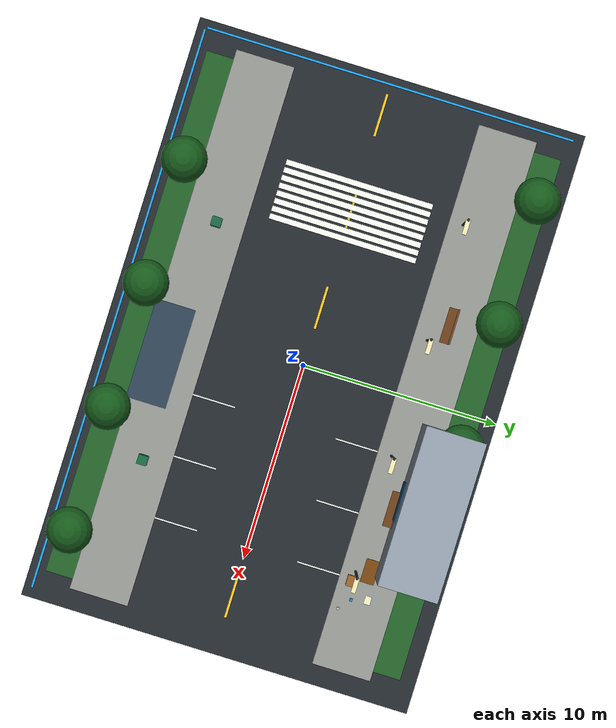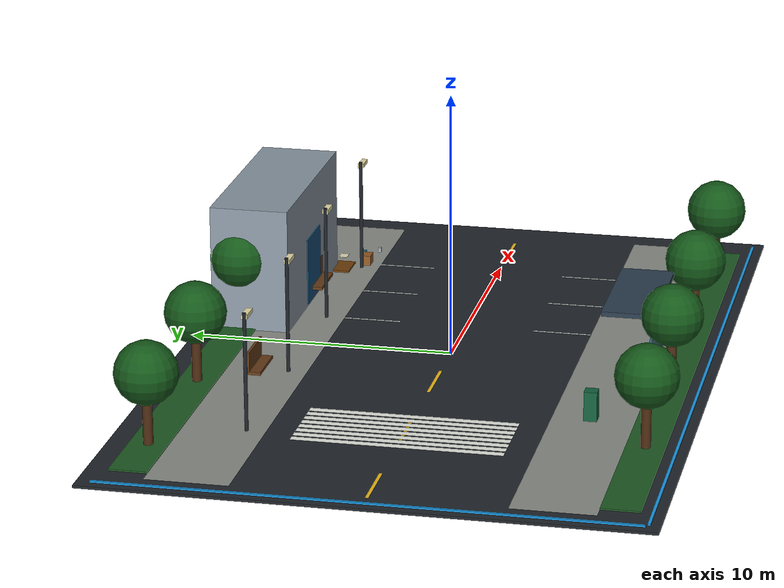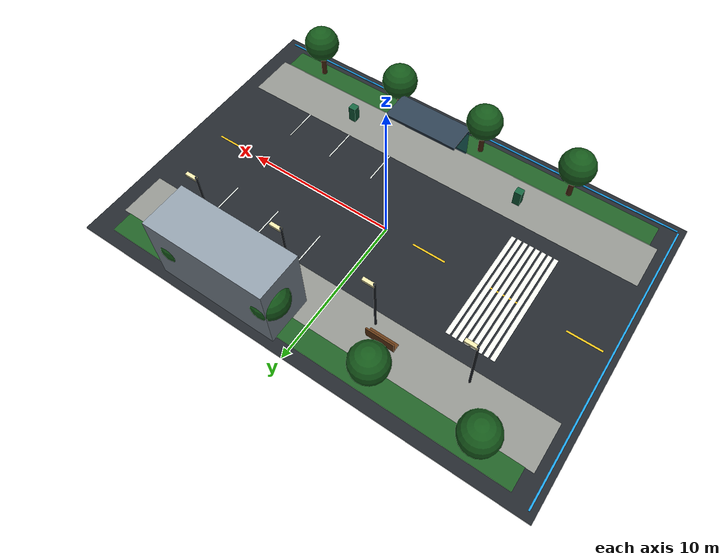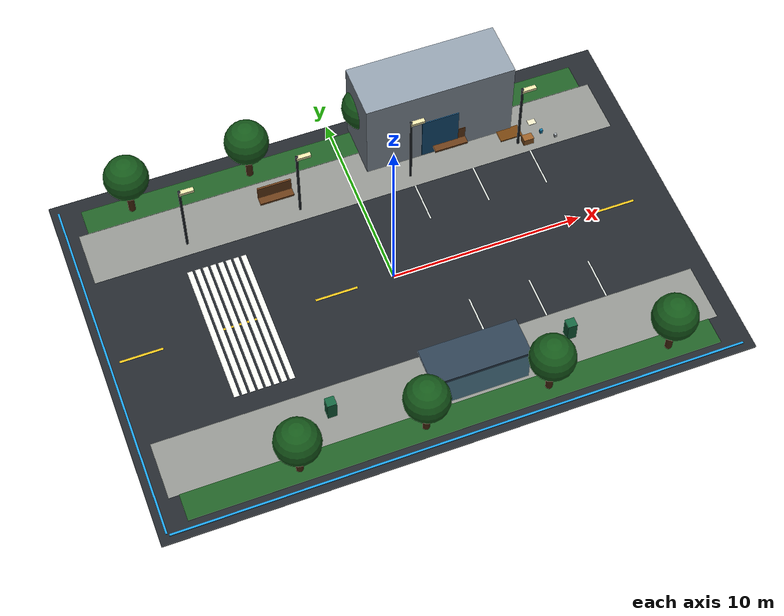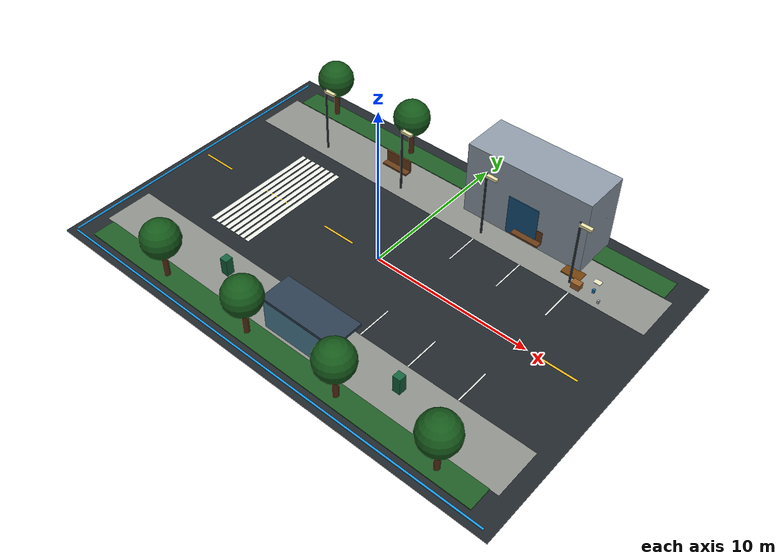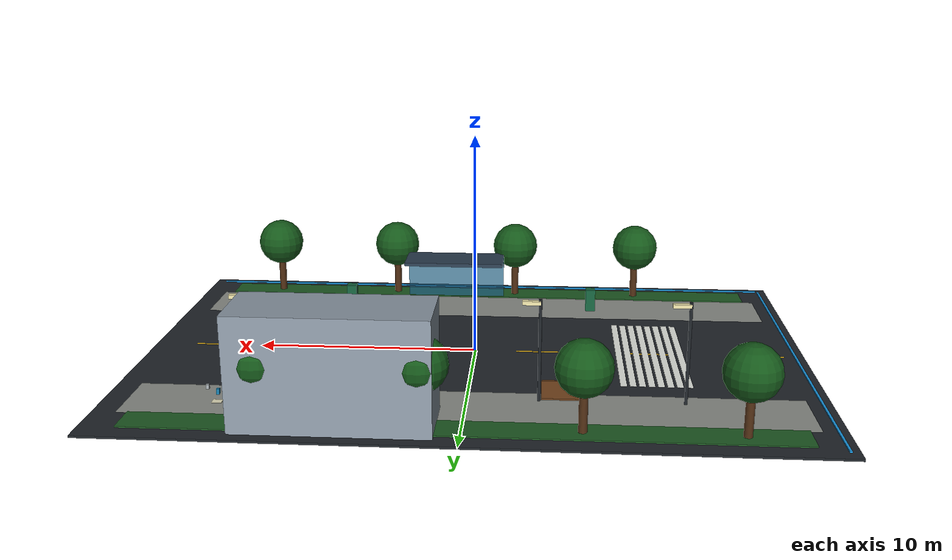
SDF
<?xml version='1.0' encoding='utf-8'?>
<sdf version="1.9">
  <world name="sanitation_campus_small">
    <plugin filename="gz-sim-physics-system" name="gz::sim::systems::Physics" />
    <plugin filename="gz-sim-user-commands-system" name="gz::sim::systems::UserCommands" />
    <plugin filename="gz-sim-scene-broadcaster-system" name="gz::sim::systems::SceneBroadcaster" />
    <plugin filename="gz-sim-sensors-system" name="gz::sim::systems::Sensors">
      <render_engine>ogre2</render_engine>
    </plugin>
    <plugin filename="gz-sim-navsat-system" name="gz::sim::systems::NavSat" />
    <spherical_coordinates>
      <surface_model>EARTH_WGS84</surface_model>
      <world_frame_orientation>ENU</world_frame_orientation>
      <latitude_deg>31.2304</latitude_deg>
      <longitude_deg>121.4737</longitude_deg>
      <elevation>0</elevation>
      <heading_deg>0</heading_deg>
    </spherical_coordinates>
    <gravity>0 0 -9.81</gravity>
    <physics name="1ms" type="ignored">
      <max_step_size>0.005</max_step_size>
      <real_time_factor>1.0</real_time_factor>
    </physics>
    <scene>
      <ambient>0.58 0.60 0.62 1</ambient>
      <background>0.72 0.84 0.94 1</background>
      <shadows>true</shadows>
    </scene>
    <light type="directional" name="sun">
      <cast_shadows>true</cast_shadows>
      <pose>0 0 80 0 0 0</pose>
      <diffuse>0.96 0.91 0.82 1</diffuse>
      <direction>-0.45 0.25 -1.0</direction>
    </light>
    <model name="asphalt_ground">
      <static>true</static>
      <pose>0 0 -0.05 0 0 0</pose>
      <link name="link">
        <collision name="collision">
          <geometry>
            <box>
              <size>30.0 20.0 0.1</size>
            </box>
          </geometry>
        </collision>
        <visual name="visual">
          <geometry>
            <box>
              <size>30.0 20.0 0.1</size>
            </box>
          </geometry>
          <material>
            <ambient>0.13 0.15 0.17 1</ambient>
            <diffuse>0.13 0.15 0.17 1</diffuse>
            <specular>0.04 0.04 0.04 1</specular>
          </material>
        </visual>
      </link>
    </model>
    <model name="north_sidewalk">
      <static>true</static>
      <pose>0 6.3 0.001 0 0 0</pose>
      <link name="link">
        <visual name="visual">
          <geometry>
            <box>
              <size>28.0 3.0 0.002</size>
            </box>
          </geometry>
          <material>
            <ambient>0.55 0.56 0.54 1</ambient>
            <diffuse>0.55 0.56 0.54 1</diffuse>
            <specular>0.04 0.04 0.04 1</specular>
          </material>
        </visual>
      </link>
    </model>
    <model name="south_sidewalk">
      <static>true</static>
      <pose>0 -6.3 0.001 0 0 0</pose>
      <link name="link">
        <visual name="visual">
          <geometry>
            <box>
              <size>28.0 3.0 0.002</size>
            </box>
          </geometry>
          <material>
            <ambient>0.55 0.56 0.54 1</ambient>
            <diffuse>0.55 0.56 0.54 1</diffuse>
            <specular>0.04 0.04 0.04 1</specular>
          </material>
        </visual>
      </link>
    </model>
    <model name="north_green_verge">
      <static>true</static>
      <pose>0 8.5 0.03 0 0 0</pose>
      <link name="link">
        <visual name="visual">
          <geometry>
            <box>
              <size>27.0 1.4 0.06</size>
            </box>
          </geometry>
          <material>
            <ambient>0.12 0.36 0.14 1</ambient>
            <diffuse>0.12 0.36 0.14 1</diffuse>
            <specular>0.04 0.04 0.04 1</specular>
          </material>
        </visual>
      </link>
    </model>
    <model name="south_green_verge">
      <static>true</static>
      <pose>0 -8.5 0.03 0 0 0</pose>
      <link name="link">
        <visual name="visual">
          <geometry>
            <box>
              <size>27.0 1.4 0.06</size>
            </box>
          </geometry>
          <material>
            <ambient>0.12 0.36 0.14 1</ambient>
            <diffuse>0.12 0.36 0.14 1</diffuse>
            <specular>0.04 0.04 0.04 1</specular>
          </material>
        </visual>
      </link>
    </model>
    <model name="center_dash_00">
      <static>true</static>
      <pose>-13.0 0 0.012 0 0 0</pose>
      <link name="link">
        <visual name="visual">
          <geometry>
            <box>
              <size>2.2 0.12 0.012</size>
            </box>
          </geometry>
          <material>
            <ambient>0.95 0.74 0.10 1</ambient>
            <diffuse>0.95 0.74 0.10 1</diffuse>
            <specular>0.04 0.04 0.04 1</specular>
          </material>
        </visual>
      </link>
    </model>
    <model name="center_dash_01">
      <static>true</static>
      <pose>-8.0 0 0.012 0 0 0</pose>
      <link name="link">
        <visual name="visual">
          <geometry>
            <box>
              <size>2.2 0.12 0.012</size>
            </box>
          </geometry>
          <material>
            <ambient>0.95 0.74 0.10 1</ambient>
            <diffuse>0.95 0.74 0.10 1</diffuse>
            <specular>0.04 0.04 0.04 1</specular>
          </material>
        </visual>
      </link>
    </model>
    <model name="center_dash_02">
      <static>true</static>
      <pose>-3.0 0 0.012 0 0 0</pose>
      <link name="link">
        <visual name="visual">
          <geometry>
            <box>
              <size>2.2 0.12 0.012</size>
            </box>
          </geometry>
          <material>
            <ambient>0.95 0.74 0.10 1</ambient>
            <diffuse>0.95 0.74 0.10 1</diffuse>
            <specular>0.04 0.04 0.04 1</specular>
          </material>
        </visual>
      </link>
    </model>
    <model name="center_dash_03">
      <static>true</static>
      <pose>2.0 0 0.012 0 0 0</pose>
      <link name="link">
        <visual name="visual">
          <geometry>
            <box>
              <size>2.2 0.12 0.012</size>
            </box>
          </geometry>
          <material>
            <ambient>0.95 0.74 0.10 1</ambient>
            <diffuse>0.95 0.74 0.10 1</diffuse>
            <specular>0.04 0.04 0.04 1</specular>
          </material>
        </visual>
      </link>
    </model>
    <model name="center_dash_04">
      <static>true</static>
      <pose>7.0 0 0.012 0 0 0</pose>
      <link name="link">
        <visual name="visual">
          <geometry>
            <box>
              <size>2.2 0.12 0.012</size>
            </box>
          </geometry>
          <material>
            <ambient>0.95 0.74 0.10 1</ambient>
            <diffuse>0.95 0.74 0.10 1</diffuse>
            <specular>0.04 0.04 0.04 1</specular>
          </material>
        </visual>
      </link>
    </model>
    <model name="center_dash_05">
      <static>true</static>
      <pose>12.0 0 0.012 0 0 0</pose>
      <link name="link">
        <visual name="visual">
          <geometry>
            <box>
              <size>2.2 0.12 0.012</size>
            </box>
          </geometry>
          <material>
            <ambient>0.95 0.74 0.10 1</ambient>
            <diffuse>0.95 0.74 0.10 1</diffuse>
            <specular>0.04 0.04 0.04 1</specular>
          </material>
        </visual>
      </link>
    </model>
    <model name="crosswalk_00">
      <static>true</static>
      <pose>-9.4 0 0.014 0 0 0</pose>
      <link name="link">
        <visual name="visual">
          <geometry>
            <box>
              <size>0.28 7.6 0.014</size>
            </box>
          </geometry>
          <material>
            <ambient>0.92 0.93 0.90 1</ambient>
            <diffuse>0.92 0.93 0.90 1</diffuse>
            <specular>0.04 0.04 0.04 1</specular>
          </material>
        </visual>
      </link>
    </model>
    <model name="crosswalk_01">
      <static>true</static>
      <pose>-9.0 0 0.014 0 0 0</pose>
      <link name="link">
        <visual name="visual">
          <geometry>
            <box>
              <size>0.28 7.6 0.014</size>
            </box>
          </geometry>
          <material>
            <ambient>0.92 0.93 0.90 1</ambient>
            <diffuse>0.92 0.93 0.90 1</diffuse>
            <specular>0.04 0.04 0.04 1</specular>
          </material>
        </visual>
      </link>
    </model>
    <model name="crosswalk_02">
      <static>true</static>
      <pose>-8.6 0 0.014 0 0 0</pose>
      <link name="link">
        <visual name="visual">
          <geometry>
            <box>
              <size>0.28 7.6 0.014</size>
            </box>
          </geometry>
          <material>
            <ambient>0.92 0.93 0.90 1</ambient>
            <diffuse>0.92 0.93 0.90 1</diffuse>
            <specular>0.04 0.04 0.04 1</specular>
          </material>
        </visual>
      </link>
    </model>
    <model name="crosswalk_03">
      <static>true</static>
      <pose>-8.2 0 0.014 0 0 0</pose>
      <link name="link">
        <visual name="visual">
          <geometry>
            <box>
              <size>0.28 7.6 0.014</size>
            </box>
          </geometry>
          <material>
            <ambient>0.92 0.93 0.90 1</ambient>
            <diffuse>0.92 0.93 0.90 1</diffuse>
            <specular>0.04 0.04 0.04 1</specular>
          </material>
        </visual>
      </link>
    </model>
    <model name="crosswalk_04">
      <static>true</static>
      <pose>-7.8 0 0.014 0 0 0</pose>
      <link name="link">
        <visual name="visual">
          <geometry>
            <box>
              <size>0.28 7.6 0.014</size>
            </box>
          </geometry>
          <material>
            <ambient>0.92 0.93 0.90 1</ambient>
            <diffuse>0.92 0.93 0.90 1</diffuse>
            <specular>0.04 0.04 0.04 1</specular>
          </material>
        </visual>
      </link>
    </model>
    <model name="crosswalk_05">
      <static>true</static>
      <pose>-7.4 0 0.014 0 0 0</pose>
      <link name="link">
        <visual name="visual">
          <geometry>
            <box>
              <size>0.28 7.6 0.014</size>
            </box>
          </geometry>
          <material>
            <ambient>0.92 0.93 0.90 1</ambient>
            <diffuse>0.92 0.93 0.90 1</diffuse>
            <specular>0.04 0.04 0.04 1</specular>
          </material>
        </visual>
      </link>
    </model>
    <model name="crosswalk_06">
      <static>true</static>
      <pose>-7.0 0 0.014 0 0 0</pose>
      <link name="link">
        <visual name="visual">
          <geometry>
            <box>
              <size>0.28 7.6 0.014</size>
            </box>
          </geometry>
          <material>
            <ambient>0.92 0.93 0.90 1</ambient>
            <diffuse>0.92 0.93 0.90 1</diffuse>
            <specular>0.04 0.04 0.04 1</specular>
          </material>
        </visual>
      </link>
    </model>
    <model name="crosswalk_07">
      <static>true</static>
      <pose>-6.6 0 0.014 0 0 0</pose>
      <link name="link">
        <visual name="visual">
          <geometry>
            <box>
              <size>0.28 7.6 0.014</size>
            </box>
          </geometry>
          <material>
            <ambient>0.92 0.93 0.90 1</ambient>
            <diffuse>0.92 0.93 0.90 1</diffuse>
            <specular>0.04 0.04 0.04 1</specular>
          </material>
        </visual>
      </link>
    </model>
    <model name="parking_line_-1_0">
      <static>true</static>
      <pose>3.0 -3.6999999999999997 0.013 0 0 0</pose>
      <link name="link">
        <visual name="visual">
          <geometry>
            <box>
              <size>0.08 2.2 0.012</size>
            </box>
          </geometry>
          <material>
            <ambient>0.86 0.88 0.86 1</ambient>
            <diffuse>0.86 0.88 0.86 1</diffuse>
            <specular>0.04 0.04 0.04 1</specular>
          </material>
        </visual>
      </link>
    </model>
    <model name="parking_line_1_0">
      <static>true</static>
      <pose>3.0 3.6999999999999997 0.013 0 0 0</pose>
      <link name="link">
        <visual name="visual">
          <geometry>
            <box>
              <size>0.08 2.2 0.012</size>
            </box>
          </geometry>
          <material>
            <ambient>0.86 0.88 0.86 1</ambient>
            <diffuse>0.86 0.88 0.86 1</diffuse>
            <specular>0.04 0.04 0.04 1</specular>
          </material>
        </visual>
      </link>
    </model>
    <model name="parking_line_-1_1">
      <static>true</static>
      <pose>6.2 -3.6999999999999997 0.013 0 0 0</pose>
      <link name="link">
        <visual name="visual">
          <geometry>
            <box>
              <size>0.08 2.2 0.012</size>
            </box>
          </geometry>
          <material>
            <ambient>0.86 0.88 0.86 1</ambient>
            <diffuse>0.86 0.88 0.86 1</diffuse>
            <specular>0.04 0.04 0.04 1</specular>
          </material>
        </visual>
      </link>
    </model>
    <model name="parking_line_1_1">
      <static>true</static>
      <pose>6.2 3.6999999999999997 0.013 0 0 0</pose>
      <link name="link">
        <visual name="visual">
          <geometry>
            <box>
              <size>0.08 2.2 0.012</size>
            </box>
          </geometry>
          <material>
            <ambient>0.86 0.88 0.86 1</ambient>
            <diffuse>0.86 0.88 0.86 1</diffuse>
            <specular>0.04 0.04 0.04 1</specular>
          </material>
        </visual>
      </link>
    </model>
    <model name="parking_line_-1_2">
      <static>true</static>
      <pose>9.4 -3.6999999999999997 0.013 0 0 0</pose>
      <link name="link">
        <visual name="visual">
          <geometry>
            <box>
              <size>0.08 2.2 0.012</size>
            </box>
          </geometry>
          <material>
            <ambient>0.86 0.88 0.86 1</ambient>
            <diffuse>0.86 0.88 0.86 1</diffuse>
            <specular>0.04 0.04 0.04 1</specular>
          </material>
        </visual>
      </link>
    </model>
    <model name="parking_line_1_2">
      <static>true</static>
      <pose>9.4 3.6999999999999997 0.013 0 0 0</pose>
      <link name="link">
        <visual name="visual">
          <geometry>
            <box>
              <size>0.08 2.2 0.012</size>
            </box>
          </geometry>
          <material>
            <ambient>0.86 0.88 0.86 1</ambient>
            <diffuse>0.86 0.88 0.86 1</diffuse>
            <specular>0.04 0.04 0.04 1</specular>
          </material>
        </visual>
      </link>
    </model>
    <model name="demo_service_center">
      <static>true</static>
      <pose>5.0 8.0 2.4 0 0 0</pose>
      <link name="link">
        <collision name="collision">
          <geometry>
            <box>
              <size>8.0 3.0 4.8</size>
            </box>
          </geometry>
        </collision>
        <visual name="visual">
          <geometry>
            <box>
              <size>8.0 3.0 4.8</size>
            </box>
          </geometry>
          <material>
            <ambient>0.55 0.60 0.65 1</ambient>
            <diffuse>0.55 0.60 0.65 1</diffuse>
            <specular>0.04 0.04 0.04 1</specular>
          </material>
        </visual>
      </link>
    </model>
    <model name="demo_glass_entry">
      <static>true</static>
      <pose>5.0 6.49 1.4 0 0 0</pose>
      <link name="link">
        <visual name="visual">
          <geometry>
            <box>
              <size>2.0 0.08 2.6</size>
            </box>
          </geometry>
          <material>
            <ambient>0.08 0.31 0.48 1</ambient>
            <diffuse>0.08 0.31 0.48 1</diffuse>
            <specular>0.04 0.04 0.04 1</specular>
          </material>
        </visual>
      </link>
    </model>
    <model name="tree_00">
      <static>true</static>
      <pose>-11.0 8.5 0 0 0 0</pose>
      <link name="link">
        <collision name="trunk_collision">
          <geometry>
            <cylinder>
              <radius>0.18</radius>
              <length>2.2</length>
            </cylinder>
          </geometry>
          <pose>0 0 1.1 0 0 0</pose>
        </collision>
        <visual name="trunk">
          <pose>0 0 1.1 0 0 0</pose>
          <geometry>
            <cylinder>
              <radius>0.18</radius>
              <length>2.2</length>
            </cylinder>
          </geometry>
          <material>
            <ambient>0.30 0.17 0.07 1</ambient>
            <diffuse>0.30 0.17 0.07 1</diffuse>
            <specular>0.04 0.04 0.04 1</specular>
          </material>
        </visual>
        <visual name="crown">
          <pose>0 0 2.7 0 0 0</pose>
          <geometry>
            <sphere>
              <radius>1.15</radius>
            </sphere>
          </geometry>
          <material>
            <ambient>0.08 0.34 0.10 1</ambient>
            <diffuse>0.08 0.34 0.10 1</diffuse>
            <specular>0.04 0.04 0.04 1</specular>
          </material>
        </visual>
      </link>
    </model>
    <model name="tree_01">
      <static>true</static>
      <pose>-7.857142857142858 -8.5 0 0 0 0</pose>
      <link name="link">
        <collision name="trunk_collision">
          <geometry>
            <cylinder>
              <radius>0.18</radius>
              <length>2.2</length>
            </cylinder>
          </geometry>
          <pose>0 0 1.1 0 0 0</pose>
        </collision>
        <visual name="trunk">
          <pose>0 0 1.1 0 0 0</pose>
          <geometry>
            <cylinder>
              <radius>0.18</radius>
              <length>2.2</length>
            </cylinder>
          </geometry>
          <material>
            <ambient>0.30 0.17 0.07 1</ambient>
            <diffuse>0.30 0.17 0.07 1</diffuse>
            <specular>0.04 0.04 0.04 1</specular>
          </material>
        </visual>
        <visual name="crown">
          <pose>0 0 2.7 0 0 0</pose>
          <geometry>
            <sphere>
              <radius>1.15</radius>
            </sphere>
          </geometry>
          <material>
            <ambient>0.08 0.34 0.10 1</ambient>
            <diffuse>0.08 0.34 0.10 1</diffuse>
            <specular>0.04 0.04 0.04 1</specular>
          </material>
        </visual>
      </link>
    </model>
    <model name="tree_02">
      <static>true</static>
      <pose>-4.714285714285714 8.5 0 0 0 0</pose>
      <link name="link">
        <collision name="trunk_collision">
          <geometry>
            <cylinder>
              <radius>0.18</radius>
              <length>2.2</length>
            </cylinder>
          </geometry>
          <pose>0 0 1.1 0 0 0</pose>
        </collision>
        <visual name="trunk">
          <pose>0 0 1.1 0 0 0</pose>
          <geometry>
            <cylinder>
              <radius>0.18</radius>
              <length>2.2</length>
            </cylinder>
          </geometry>
          <material>
            <ambient>0.30 0.17 0.07 1</ambient>
            <diffuse>0.30 0.17 0.07 1</diffuse>
            <specular>0.04 0.04 0.04 1</specular>
          </material>
        </visual>
        <visual name="crown">
          <pose>0 0 2.7 0 0 0</pose>
          <geometry>
            <sphere>
              <radius>1.15</radius>
            </sphere>
          </geometry>
          <material>
            <ambient>0.08 0.34 0.10 1</ambient>
            <diffuse>0.08 0.34 0.10 1</diffuse>
            <specular>0.04 0.04 0.04 1</specular>
          </material>
        </visual>
      </link>
    </model>
    <model name="tree_03">
      <static>true</static>
      <pose>-1.5714285714285712 -8.5 0 0 0 0</pose>
      <link name="link">
        <collision name="trunk_collision">
          <geometry>
            <cylinder>
              <radius>0.18</radius>
              <length>2.2</length>
            </cylinder>
          </geometry>
          <pose>0 0 1.1 0 0 0</pose>
        </collision>
        <visual name="trunk">
          <pose>0 0 1.1 0 0 0</pose>
          <geometry>
            <cylinder>
              <radius>0.18</radius>
              <length>2.2</length>
            </cylinder>
          </geometry>
          <material>
            <ambient>0.30 0.17 0.07 1</ambient>
            <diffuse>0.30 0.17 0.07 1</diffuse>
            <specular>0.04 0.04 0.04 1</specular>
          </material>
        </visual>
        <visual name="crown">
          <pose>0 0 2.7 0 0 0</pose>
          <geometry>
            <sphere>
              <radius>1.15</radius>
            </sphere>
          </geometry>
          <material>
            <ambient>0.08 0.34 0.10 1</ambient>
            <diffuse>0.08 0.34 0.10 1</diffuse>
            <specular>0.04 0.04 0.04 1</specular>
          </material>
        </visual>
      </link>
    </model>
    <model name="tree_04">
      <static>true</static>
      <pose>1.5714285714285712 8.5 0 0 0 0</pose>
      <link name="link">
        <collision name="trunk_collision">
          <geometry>
            <cylinder>
              <radius>0.18</radius>
              <length>2.2</length>
            </cylinder>
          </geometry>
          <pose>0 0 1.1 0 0 0</pose>
        </collision>
        <visual name="trunk">
          <pose>0 0 1.1 0 0 0</pose>
          <geometry>
            <cylinder>
              <radius>0.18</radius>
              <length>2.2</length>
            </cylinder>
          </geometry>
          <material>
            <ambient>0.30 0.17 0.07 1</ambient>
            <diffuse>0.30 0.17 0.07 1</diffuse>
            <specular>0.04 0.04 0.04 1</specular>
          </material>
        </visual>
        <visual name="crown">
          <pose>0 0 2.7 0 0 0</pose>
          <geometry>
            <sphere>
              <radius>1.15</radius>
            </sphere>
          </geometry>
          <material>
            <ambient>0.08 0.34 0.10 1</ambient>
            <diffuse>0.08 0.34 0.10 1</diffuse>
            <specular>0.04 0.04 0.04 1</specular>
          </material>
        </visual>
      </link>
    </model>
    <model name="tree_05">
      <static>true</static>
      <pose>4.714285714285715 -8.5 0 0 0 0</pose>
      <link name="link">
        <collision name="trunk_collision">
          <geometry>
            <cylinder>
              <radius>0.18</radius>
              <length>2.2</length>
            </cylinder>
          </geometry>
          <pose>0 0 1.1 0 0 0</pose>
        </collision>
        <visual name="trunk">
          <pose>0 0 1.1 0 0 0</pose>
          <geometry>
            <cylinder>
              <radius>0.18</radius>
              <length>2.2</length>
            </cylinder>
          </geometry>
          <material>
            <ambient>0.30 0.17 0.07 1</ambient>
            <diffuse>0.30 0.17 0.07 1</diffuse>
            <specular>0.04 0.04 0.04 1</specular>
          </material>
        </visual>
        <visual name="crown">
          <pose>0 0 2.7 0 0 0</pose>
          <geometry>
            <sphere>
              <radius>1.15</radius>
            </sphere>
          </geometry>
          <material>
            <ambient>0.08 0.34 0.10 1</ambient>
            <diffuse>0.08 0.34 0.10 1</diffuse>
            <specular>0.04 0.04 0.04 1</specular>
          </material>
        </visual>
      </link>
    </model>
    <model name="tree_06">
      <static>true</static>
      <pose>7.857142857142858 8.5 0 0 0 0</pose>
      <link name="link">
        <collision name="trunk_collision">
          <geometry>
            <cylinder>
              <radius>0.18</radius>
              <length>2.2</length>
            </cylinder>
          </geometry>
          <pose>0 0 1.1 0 0 0</pose>
        </collision>
        <visual name="trunk">
          <pose>0 0 1.1 0 0 0</pose>
          <geometry>
            <cylinder>
              <radius>0.18</radius>
              <length>2.2</length>
            </cylinder>
          </geometry>
          <material>
            <ambient>0.30 0.17 0.07 1</ambient>
            <diffuse>0.30 0.17 0.07 1</diffuse>
            <specular>0.04 0.04 0.04 1</specular>
          </material>
        </visual>
        <visual name="crown">
          <pose>0 0 2.7 0 0 0</pose>
          <geometry>
            <sphere>
              <radius>1.15</radius>
            </sphere>
          </geometry>
          <material>
            <ambient>0.08 0.34 0.10 1</ambient>
            <diffuse>0.08 0.34 0.10 1</diffuse>
            <specular>0.04 0.04 0.04 1</specular>
          </material>
        </visual>
      </link>
    </model>
    <model name="tree_07">
      <static>true</static>
      <pose>11.0 -8.5 0 0 0 0</pose>
      <link name="link">
        <collision name="trunk_collision">
          <geometry>
            <cylinder>
              <radius>0.18</radius>
              <length>2.2</length>
            </cylinder>
          </geometry>
          <pose>0 0 1.1 0 0 0</pose>
        </collision>
        <visual name="trunk">
          <pose>0 0 1.1 0 0 0</pose>
          <geometry>
            <cylinder>
              <radius>0.18</radius>
              <length>2.2</length>
            </cylinder>
          </geometry>
          <material>
            <ambient>0.30 0.17 0.07 1</ambient>
            <diffuse>0.30 0.17 0.07 1</diffuse>
            <specular>0.04 0.04 0.04 1</specular>
          </material>
        </visual>
        <visual name="crown">
          <pose>0 0 2.7 0 0 0</pose>
          <geometry>
            <sphere>
              <radius>1.15</radius>
            </sphere>
          </geometry>
          <material>
            <ambient>0.08 0.34 0.10 1</ambient>
            <diffuse>0.08 0.34 0.10 1</diffuse>
            <specular>0.04 0.04 0.04 1</specular>
          </material>
        </visual>
      </link>
    </model>
    <model name="lamp_post_00">
      <static>true</static>
      <pose>-9.0 5.5 2.2 0 0 0</pose>
      <link name="link">
        <collision name="collision">
          <geometry>
            <cylinder>
              <radius>0.07</radius>
              <length>4.4</length>
            </cylinder>
          </geometry>
        </collision>
        <visual name="visual">
          <geometry>
            <cylinder>
              <radius>0.07</radius>
              <length>4.4</length>
            </cylinder>
          </geometry>
          <material>
            <ambient>0.12 0.14 0.16 1</ambient>
            <diffuse>0.12 0.14 0.16 1</diffuse>
            <specular>0.04 0.04 0.04 1</specular>
          </material>
        </visual>
      </link>
    </model>
    <model name="lamp_head_00">
      <static>true</static>
      <pose>-8.65 5.5 4.25 0 0 0</pose>
      <link name="link">
        <visual name="visual">
          <geometry>
            <box>
              <size>0.75 0.22 0.16</size>
            </box>
          </geometry>
          <material>
            <ambient>0.92 0.88 0.66 1</ambient>
            <diffuse>0.92 0.88 0.66 1</diffuse>
            <specular>0.04 0.04 0.04 1</specular>
          </material>
        </visual>
      </link>
    </model>
    <model name="lamp_post_01">
      <static>true</static>
      <pose>-3.0 5.5 2.2 0 0 0</pose>
      <link name="link">
        <collision name="collision">
          <geometry>
            <cylinder>
              <radius>0.07</radius>
              <length>4.4</length>
            </cylinder>
          </geometry>
        </collision>
        <visual name="visual">
          <geometry>
            <cylinder>
              <radius>0.07</radius>
              <length>4.4</length>
            </cylinder>
          </geometry>
          <material>
            <ambient>0.12 0.14 0.16 1</ambient>
            <diffuse>0.12 0.14 0.16 1</diffuse>
            <specular>0.04 0.04 0.04 1</specular>
          </material>
        </visual>
      </link>
    </model>
    <model name="lamp_head_01">
      <static>true</static>
      <pose>-2.65 5.5 4.25 0 0 0</pose>
      <link name="link">
        <visual name="visual">
          <geometry>
            <box>
              <size>0.75 0.22 0.16</size>
            </box>
          </geometry>
          <material>
            <ambient>0.92 0.88 0.66 1</ambient>
            <diffuse>0.92 0.88 0.66 1</diffuse>
            <specular>0.04 0.04 0.04 1</specular>
          </material>
        </visual>
      </link>
    </model>
    <model name="lamp_post_02">
      <static>true</static>
      <pose>3.0 5.5 2.2 0 0 0</pose>
      <link name="link">
        <collision name="collision">
          <geometry>
            <cylinder>
              <radius>0.07</radius>
              <length>4.4</length>
            </cylinder>
          </geometry>
        </collision>
        <visual name="visual">
          <geometry>
            <cylinder>
              <radius>0.07</radius>
              <length>4.4</length>
            </cylinder>
          </geometry>
          <material>
            <ambient>0.12 0.14 0.16 1</ambient>
            <diffuse>0.12 0.14 0.16 1</diffuse>
            <specular>0.04 0.04 0.04 1</specular>
          </material>
        </visual>
      </link>
    </model>
    <model name="lamp_head_02">
      <static>true</static>
      <pose>3.35 5.5 4.25 0 0 0</pose>
      <link name="link">
        <visual name="visual">
          <geometry>
            <box>
              <size>0.75 0.22 0.16</size>
            </box>
          </geometry>
          <material>
            <ambient>0.92 0.88 0.66 1</ambient>
            <diffuse>0.92 0.88 0.66 1</diffuse>
            <specular>0.04 0.04 0.04 1</specular>
          </material>
        </visual>
      </link>
    </model>
    <model name="lamp_post_03">
      <static>true</static>
      <pose>9.0 5.5 2.2 0 0 0</pose>
      <link name="link">
        <collision name="collision">
          <geometry>
            <cylinder>
              <radius>0.07</radius>
              <length>4.4</length>
            </cylinder>
          </geometry>
        </collision>
        <visual name="visual">
          <geometry>
            <cylinder>
              <radius>0.07</radius>
              <length>4.4</length>
            </cylinder>
          </geometry>
          <material>
            <ambient>0.12 0.14 0.16 1</ambient>
            <diffuse>0.12 0.14 0.16 1</diffuse>
            <specular>0.04 0.04 0.04 1</specular>
          </material>
        </visual>
      </link>
    </model>
    <model name="lamp_head_03">
      <static>true</static>
      <pose>9.35 5.5 4.25 0 0 0</pose>
      <link name="link">
        <visual name="visual">
          <geometry>
            <box>
              <size>0.75 0.22 0.16</size>
            </box>
          </geometry>
          <material>
            <ambient>0.92 0.88 0.66 1</ambient>
            <diffuse>0.92 0.88 0.66 1</diffuse>
            <specular>0.04 0.04 0.04 1</specular>
          </material>
        </visual>
      </link>
    </model>
    <model name="bench_seat_0">
      <static>true</static>
      <pose>-4.0 6.3 0.55 0 0 0</pose>
      <link name="link">
        <collision name="collision">
          <geometry>
            <box>
              <size>1.8 0.48 0.12</size>
            </box>
          </geometry>
        </collision>
        <visual name="visual">
          <geometry>
            <box>
              <size>1.8 0.48 0.12</size>
            </box>
          </geometry>
          <material>
            <ambient>0.40 0.23 0.09 1</ambient>
            <diffuse>0.40 0.23 0.09 1</diffuse>
            <specular>0.04 0.04 0.04 1</specular>
          </material>
        </visual>
      </link>
    </model>
    <model name="bench_back_0">
      <static>true</static>
      <pose>-4.0 6.52 0.95 0 0 0</pose>
      <link name="link">
        <collision name="collision">
          <geometry>
            <box>
              <size>1.8 0.1 0.75</size>
            </box>
          </geometry>
        </collision>
        <visual name="visual">
          <geometry>
            <box>
              <size>1.8 0.1 0.75</size>
            </box>
          </geometry>
          <material>
            <ambient>0.40 0.23 0.09 1</ambient>
            <diffuse>0.40 0.23 0.09 1</diffuse>
            <specular>0.04 0.04 0.04 1</specular>
          </material>
        </visual>
      </link>
    </model>
    <model name="bench_seat_1">
      <static>true</static>
      <pose>5.5 6.3 0.55 0 0 0</pose>
      <link name="link">
        <collision name="collision">
          <geometry>
            <box>
              <size>1.8 0.48 0.12</size>
            </box>
          </geometry>
        </collision>
        <visual name="visual">
          <geometry>
            <box>
              <size>1.8 0.48 0.12</size>
            </box>
          </geometry>
          <material>
            <ambient>0.40 0.23 0.09 1</ambient>
            <diffuse>0.40 0.23 0.09 1</diffuse>
            <specular>0.04 0.04 0.04 1</specular>
          </material>
        </visual>
      </link>
    </model>
    <model name="bench_back_1">
      <static>true</static>
      <pose>5.5 6.52 0.95 0 0 0</pose>
      <link name="link">
        <collision name="collision">
          <geometry>
            <box>
              <size>1.8 0.1 0.75</size>
            </box>
          </geometry>
        </collision>
        <visual name="visual">
          <geometry>
            <box>
              <size>1.8 0.1 0.75</size>
            </box>
          </geometry>
          <material>
            <ambient>0.40 0.23 0.09 1</ambient>
            <diffuse>0.40 0.23 0.09 1</diffuse>
            <specular>0.04 0.04 0.04 1</specular>
          </material>
        </visual>
      </link>
    </model>
    <model name="waste_bin_0">
      <static>true</static>
      <pose>-5.5 -6.199999999999999 0.55 0 0 0</pose>
      <link name="link">
        <collision name="collision">
          <geometry>
            <box>
              <size>0.48 0.48 1.1</size>
            </box>
          </geometry>
        </collision>
        <visual name="visual">
          <geometry>
            <box>
              <size>0.48 0.48 1.1</size>
            </box>
          </geometry>
          <material>
            <ambient>0.08 0.38 0.24 1</ambient>
            <diffuse>0.08 0.38 0.24 1</diffuse>
            <specular>0.04 0.04 0.04 1</specular>
          </material>
        </visual>
      </link>
    </model>
    <model name="waste_bin_1">
      <static>true</static>
      <pose>6.8 -6.199999999999999 0.55 0 0 0</pose>
      <link name="link">
        <collision name="collision">
          <geometry>
            <box>
              <size>0.48 0.48 1.1</size>
            </box>
          </geometry>
        </collision>
        <visual name="visual">
          <geometry>
            <box>
              <size>0.48 0.48 1.1</size>
            </box>
          </geometry>
          <material>
            <ambient>0.08 0.38 0.24 1</ambient>
            <diffuse>0.08 0.38 0.24 1</diffuse>
            <specular>0.04 0.04 0.04 1</specular>
          </material>
        </visual>
      </link>
    </model>
    <model name="bus_shelter_roof">
      <static>true</static>
      <pose>1.5 -6.8 2.35 0 0 0</pose>
      <link name="link">
        <collision name="collision">
          <geometry>
            <box>
              <size>5.0 2.0 0.18</size>
            </box>
          </geometry>
        </collision>
        <visual name="visual">
          <geometry>
            <box>
              <size>5.0 2.0 0.18</size>
            </box>
          </geometry>
          <material>
            <ambient>0.17 0.24 0.31 1</ambient>
            <diffuse>0.17 0.24 0.31 1</diffuse>
            <specular>0.04 0.04 0.04 1</specular>
          </material>
        </visual>
      </link>
    </model>
    <model name="bus_shelter_glass">
      <static>true</static>
      <pose>1.5 -7.65 1.25 0 0 0</pose>
      <link name="link">
        <visual name="visual">
          <geometry>
            <box>
              <size>5.0 0.08 2.2</size>
            </box>
          </geometry>
          <material>
            <ambient>0.12 0.38 0.52 0.72</ambient>
            <diffuse>0.12 0.38 0.52 0.72</diffuse>
            <specular>0.04 0.04 0.04 1</specular>
          </material>
        </visual>
      </link>
    </model>
    <model name="target_cardboard">
      <static>true</static>
      <pose>9.5 5.4 0.2 0 0 0</pose>
      <link name="link">
        <collision name="collision">
          <geometry>
            <box>
              <size>0.55 0.4 0.4</size>
            </box>
          </geometry>
        </collision>
        <visual name="visual">
          <geometry>
            <box>
              <size>0.55 0.4 0.4</size>
            </box>
          </geometry>
          <material>
            <ambient>0.58 0.36 0.15 1</ambient>
            <diffuse>0.58 0.36 0.15 1</diffuse>
            <specular>0.04 0.04 0.04 1</specular>
          </material>
        </visual>
      </link>
    </model>
    <model name="target_bottle">
      <static>true</static>
      <pose>10.4 5.7 0.12 0 0 0</pose>
      <link name="link">
        <collision name="collision">
          <geometry>
            <box>
              <size>0.14 0.14 0.24</size>
            </box>
          </geometry>
        </collision>
        <visual name="visual">
          <geometry>
            <box>
              <size>0.14 0.14 0.24</size>
            </box>
          </geometry>
          <material>
            <ambient>0.08 0.48 0.66 1</ambient>
            <diffuse>0.08 0.48 0.66 1</diffuse>
            <specular>0.04 0.04 0.04 1</specular>
          </material>
        </visual>
      </link>
    </model>
    <model name="target_can">
      <static>true</static>
      <pose>11.0 5.2 0.1 0 0 0</pose>
      <link name="link">
        <collision name="collision">
          <geometry>
            <box>
              <size>0.13 0.13 0.2</size>
            </box>
          </geometry>
        </collision>
        <visual name="visual">
          <geometry>
            <box>
              <size>0.13 0.13 0.2</size>
            </box>
          </geometry>
          <material>
            <ambient>0.64 0.67 0.69 1</ambient>
            <diffuse>0.64 0.67 0.69 1</diffuse>
            <specular>0.04 0.04 0.04 1</specular>
          </material>
        </visual>
      </link>
    </model>
    <model name="target_leaf_pile">
      <static>true</static>
      <pose>8.8 6.2 0.04 0 0 0</pose>
      <link name="link">
        <visual name="visual">
          <geometry>
            <box>
              <size>1.2 0.7 0.08</size>
            </box>
          </geometry>
          <material>
            <ambient>0.44 0.25 0.05 1</ambient>
            <diffuse>0.44 0.25 0.05 1</diffuse>
            <specular>0.04 0.04 0.04 1</specular>
          </material>
        </visual>
      </link>
    </model>
    <model name="target_paper">
      <static>true</static>
      <pose>10.2 6.5 0.025 0 0 0</pose>
      <link name="link">
        <visual name="visual">
          <geometry>
            <box>
              <size>0.42 0.32 0.03</size>
            </box>
          </geometry>
          <material>
            <ambient>0.90 0.88 0.75 1</ambient>
            <diffuse>0.90 0.88 0.75 1</diffuse>
            <specular>0.04 0.04 0.04 1</specular>
          </material>
        </visual>
      </link>
    </model>
    <model name="dimension_x_bar">
      <static>true</static>
      <pose>0 -9.6 0.03 0 0 0</pose>
      <link name="link">
        <visual name="visual">
          <geometry>
            <box>
              <size>29.0 0.1 0.06</size>
            </box>
          </geometry>
          <material>
            <ambient>0.10 0.62 0.92 1</ambient>
            <diffuse>0.10 0.62 0.92 1</diffuse>
            <specular>0.04 0.04 0.04 1</specular>
          </material>
        </visual>
      </link>
    </model>
    <model name="dimension_y_bar">
      <static>true</static>
      <pose>-14.6 0 0.03 0 0 0</pose>
      <link name="link">
        <visual name="visual">
          <geometry>
            <box>
              <size>0.1 19.0 0.06</size>
            </box>
          </geometry>
          <material>
            <ambient>0.10 0.62 0.92 1</ambient>
            <diffuse>0.10 0.62 0.92 1</diffuse>
            <specular>0.04 0.04 0.04 1</specular>
          </material>
        </visual>
      </link>
    </model>
  </world>
</sdf>
